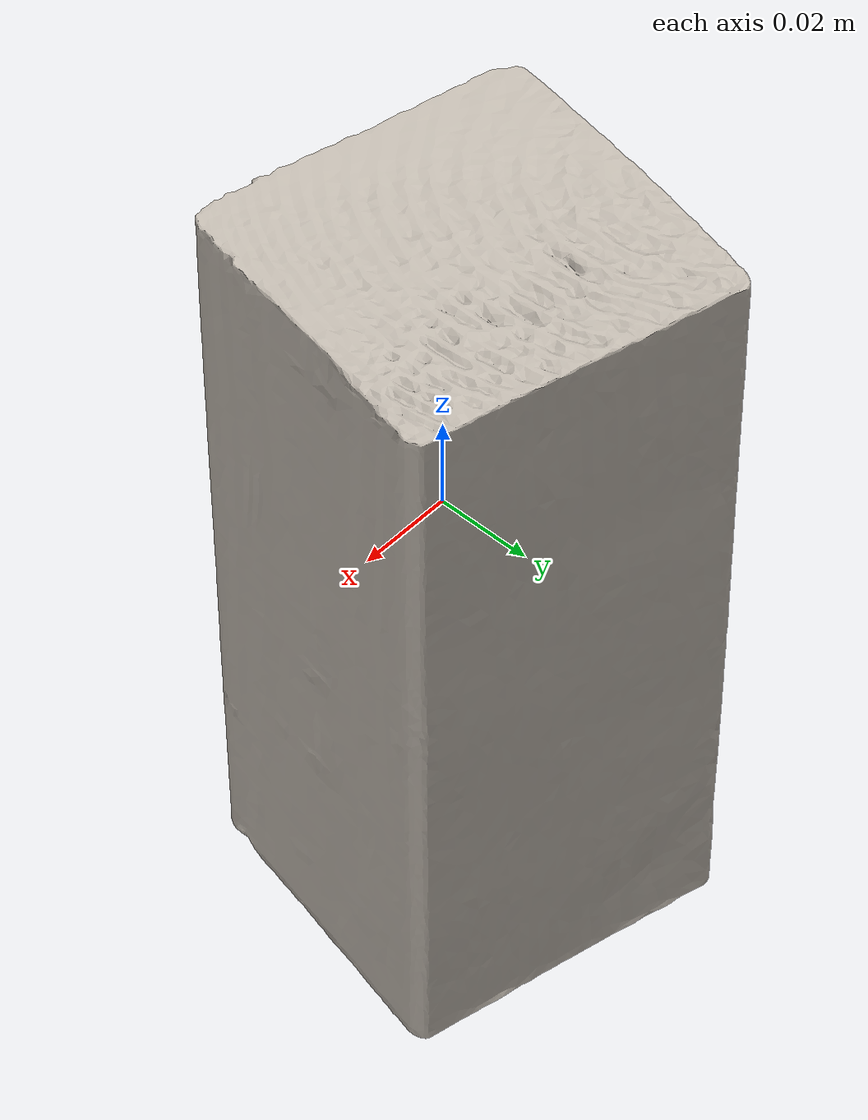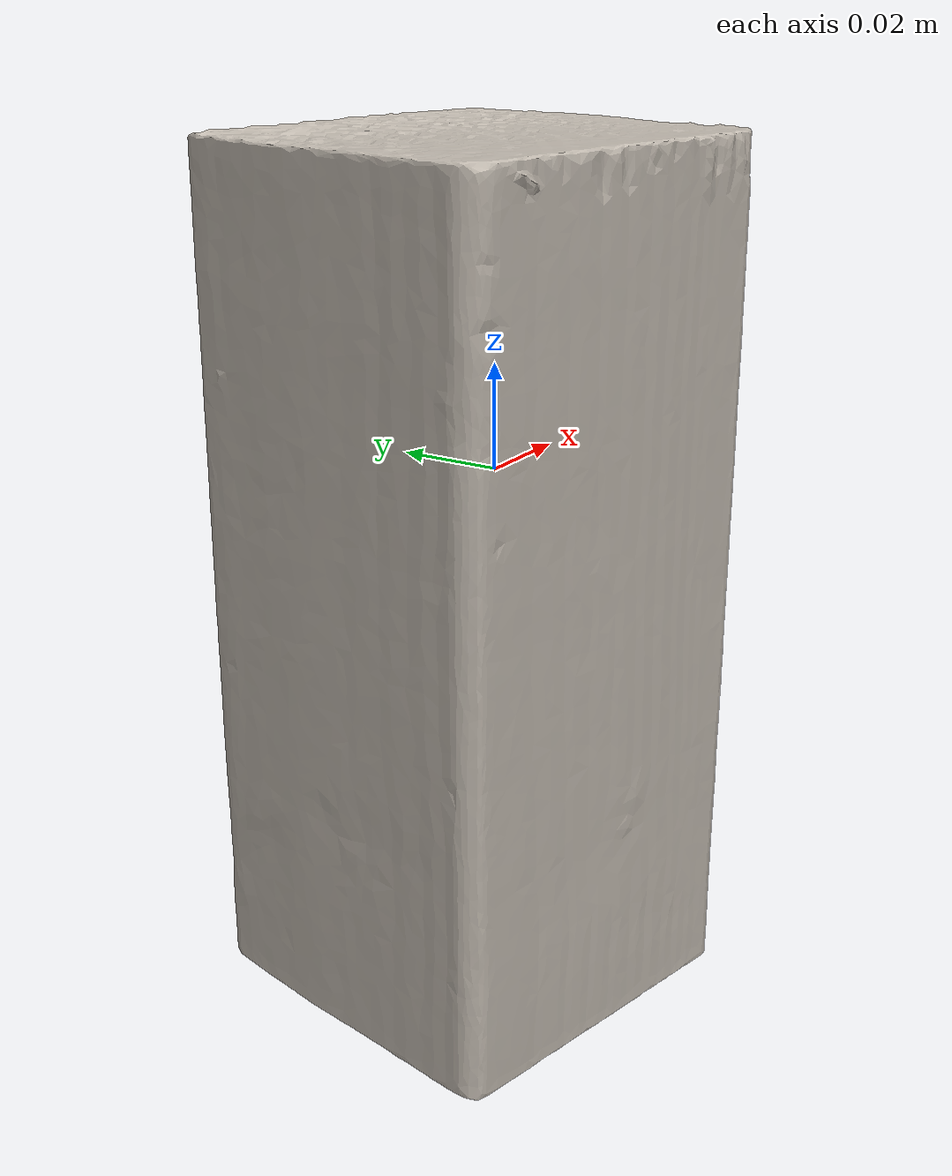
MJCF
<mujoco model="bread">
  <asset>
    <mesh file="nontextured.stl" name="obj_mesh" scale="0.8 0.8 0.8"/>
    <texture file="../../../../../textures/bread.png" type="2d" name="tex-bread" />
    <material name="bread" reflectance="0.7" texrepeat="15 15" texture="tex-bread" texuniform="true"/>
  </asset>
  <worldbody>
    <body>
      <body name="collision">
        <geom pos="-0.023789499999999998 0.009884999999999998 -0.1029445" mesh="obj_mesh" type="mesh" solimp="0.998 0.998 0.001" solref="0.001 1" density="50" friction="0.95 0.3 0.1"  material="bread" group="1" condim="4"/>
      </body>
      <body name="visual">
        <geom pos="-0.023789499999999998 0.009884999999999998 -0.1029445" mesh="obj_mesh" type="mesh" material="bread"  conaffinity="0" contype="0"  group="0" mass="0.0001"/>
        <geom pos="-0.023789499999999998 0.009884999999999998 -0.1029445" mesh="obj_mesh" type="mesh" material="bread"  conaffinity="0" contype="0"  group="1" mass="0.0001"/>
      </body>
      <site rgba="0 0 0 0" size="0.005" pos="0 0 -0.1030015" name="bottom_site"/>
      <site rgba="0 0 0 0" size="0.005" pos="0 0 0.1030015" name="top_site"/>
      <site rgba="0 0 0 0" size="0.005" pos="0.0519585 0.051732 0.1030015" name="horizontal_radius_site"/>
    </body>
  </worldbody>
</mujoco>
